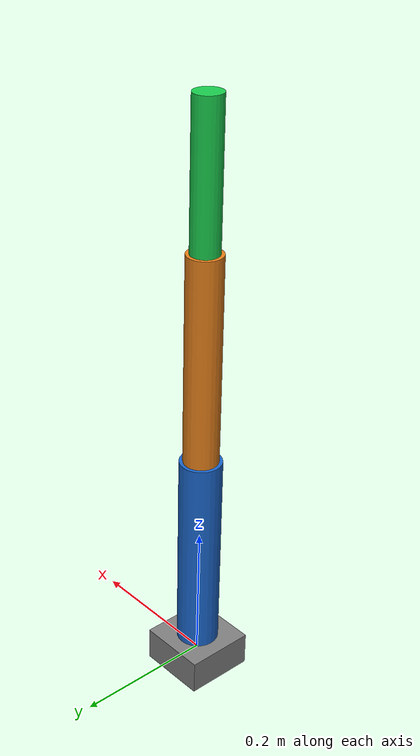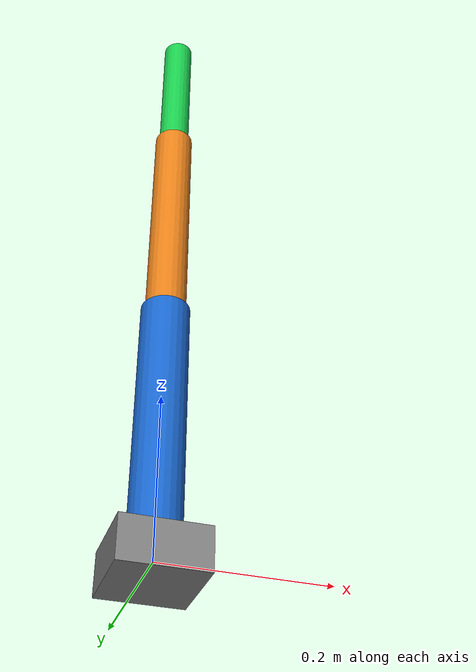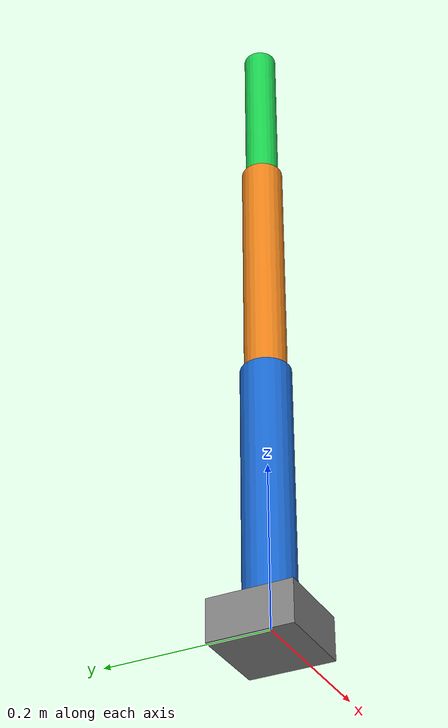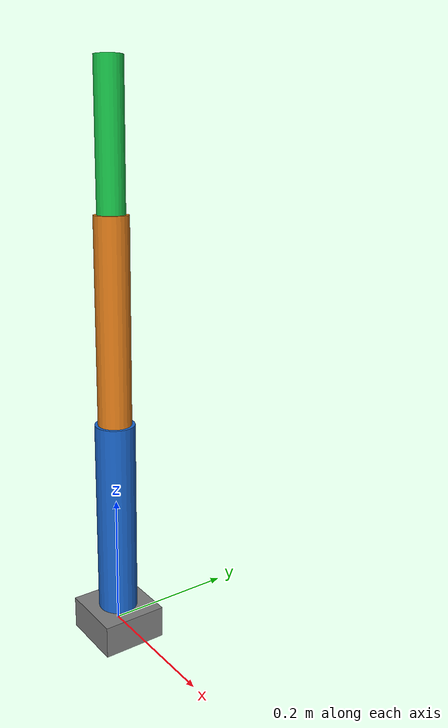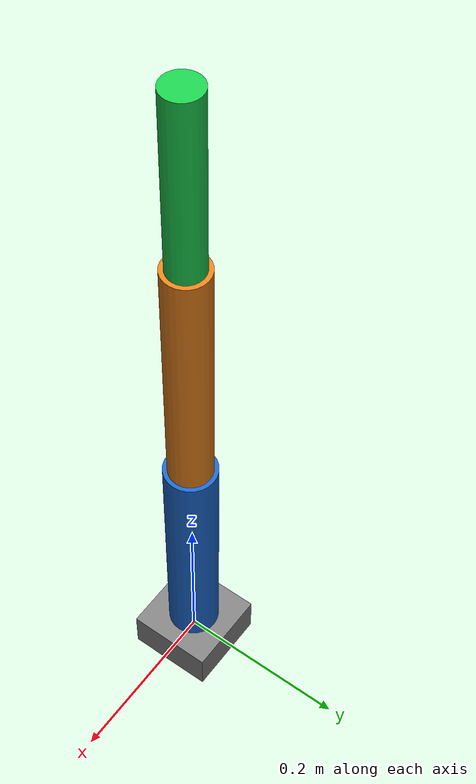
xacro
<?xml version="1.0"?>
<robot name="simple_arm" xmlns:xacro="http://www.ros.org/wiki/xacro">

  <!-- BASE -->
  <link name="base_link">
    <visual>
      <geometry><box size="0.1 0.1 0.05"/></geometry>
      <material name="gray"><color rgba="0.5 0.5 0.5 1"/></material>
    </visual>
    <collision>
      <geometry><box size="0.1 0.1 0.05"/></geometry>
    </collision>
    <inertial>
      <mass value="1.0"/>
      <inertia ixx="0.01" iyy="0.01" izz="0.01"
               ixy="0" ixz="0" iyz="0"/>
    </inertial>
  </link>

  <!-- JOINT 1 -->
  <joint name="joint1" type="revolute">
    <parent link="base_link"/>
    <child link="link1"/>
    <origin xyz="0 0 0.025"/>
    <axis xyz="0 0 1"/>
    <limit lower="-3.14" upper="3.14" effort="100" velocity="1.0"/>
    <dynamics damping="0.1"/>
  </joint>

  <!-- LINK 1 -->
  <link name="link1">
    <visual>
      <origin xyz="0 0 0.15"/>
      <geometry><cylinder radius="0.03" length="0.3"/></geometry>
      <material name="blue"><color rgba="0.1 0.4 0.8 1"/></material>
    </visual>
    <collision>
      <origin xyz="0 0 0.15"/>
      <geometry><cylinder radius="0.03" length="0.3"/></geometry>
    </collision>
    <inertial>
      <mass value="0.5"/>
      <inertia ixx="0.004" iyy="0.004" izz="0.001"
               ixy="0" ixz="0" iyz="0"/>
    </inertial>
  </link>

  <!-- JOINT 2 -->
  <joint name="joint2" type="revolute">
    <parent link="link1"/>
    <child link="link2"/>
    <origin xyz="0 0 0.3"/>
    <axis xyz="0 1 0"/>
    <limit lower="-1.57" upper="1.57" effort="50" velocity="1.0"/>
    <dynamics damping="0.1"/>
  </joint>

  <!-- LINK 2 -->
  <link name="link2">
    <visual>
      <origin xyz="0 0 0.15"/>
      <geometry><cylinder radius="0.025" length="0.3"/></geometry>
      <material name="orange"><color rgba="0.9 0.5 0.1 1"/></material>
    </visual>
    <collision>
      <origin xyz="0 0 0.15"/>
      <geometry><cylinder radius="0.025" length="0.3"/></geometry>
    </collision>
    <inertial>
      <mass value="0.3"/>
      <inertia ixx="0.003" iyy="0.003" izz="0.001"
               ixy="0" ixz="0" iyz="0"/>
    </inertial>
  </link>

  <!-- JOINT 3 -->
  <joint name="joint3" type="revolute">
    <parent link="link2"/>
    <child link="link3"/>
    <origin xyz="0 0 0.3"/>
    <axis xyz="0 1 0"/>
    <limit lower="-1.57" upper="1.57" effort="30" velocity="1.0"/>
    <dynamics damping="0.1"/>
  </joint>

  <!-- LINK 3 -->
  <link name="link3">
    <visual>
      <origin xyz="0 0 0.1"/>
      <geometry><cylinder radius="0.02" length="0.2"/></geometry>
      <material name="green"><color rgba="0.1 0.8 0.3 1"/></material>
    </visual>
    <collision>
      <origin xyz="0 0 0.1"/>
      <geometry><cylinder radius="0.02" length="0.2"/></geometry>
    </collision>
    <inertial>
      <mass value="0.1"/>
      <inertia ixx="0.001" iyy="0.001" izz="0.0005"
               ixy="0" ixz="0" iyz="0"/>
    </inertial>
  </link>

  <!-- ros2_control hardware interface -->
  <ros2_control name="arm_system" type="system">
    <hardware>
      <plugin>gz_ros2_control/GazeboSimSystem</plugin>
    </hardware>
    <joint name="joint1">
      <command_interface name="position">
        <param name="min">-3.14</param>
        <param name="max">3.14</param>
      </command_interface>
      <state_interface name="position">
        <param name="initial_value">0.0</param>
      </state_interface>
      <state_interface name="velocity"/>
    </joint>
    <joint name="joint2">
      <command_interface name="position">
        <param name="min">-1.57</param>
        <param name="max">1.57</param>
      </command_interface>
      <state_interface name="position">
        <param name="initial_value">0.0</param>
      </state_interface>
      <state_interface name="velocity"/>
    </joint>
    <joint name="joint3">
      <command_interface name="position">
        <param name="min">-1.57</param>
        <param name="max">1.57</param>
      </command_interface>
      <state_interface name="position">
        <param name="initial_value">0.0</param>
      </state_interface>
      <state_interface name="velocity"/>
    </joint>
  </ros2_control>

  <!-- ✅ THIS IS THE KEY MISSING PIECE -->
  <!-- Tells Gazebo to load the ros2_control plugin -->
  <gazebo>
    <plugin filename="gz_ros2_control-system"
            name="gz_ros2_control::GazeboSimROS2ControlPlugin">
      <parameters>$(find arm_description)/config/controllers.yaml</parameters>
    </plugin>
  </gazebo>

</robot>
